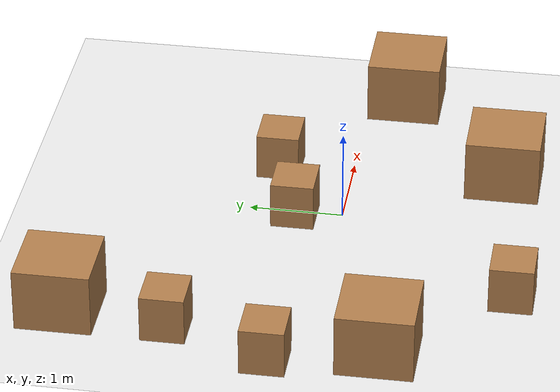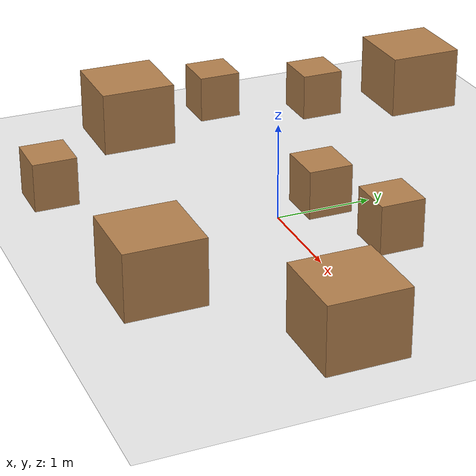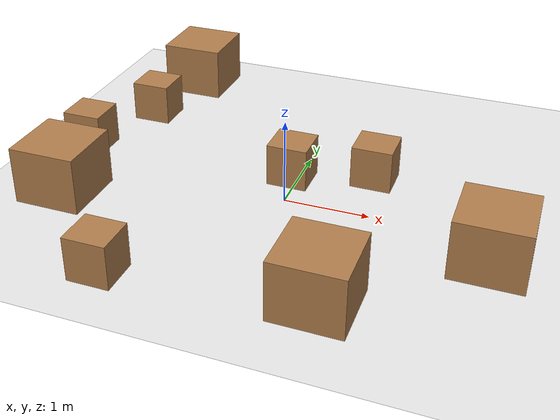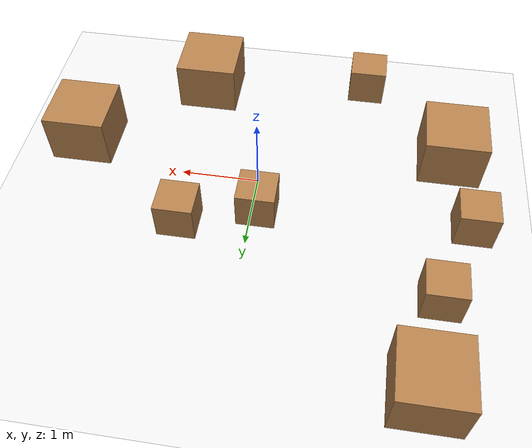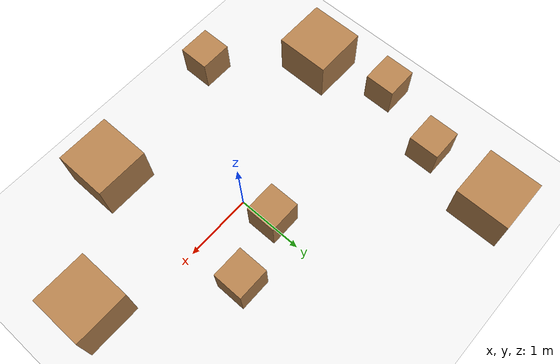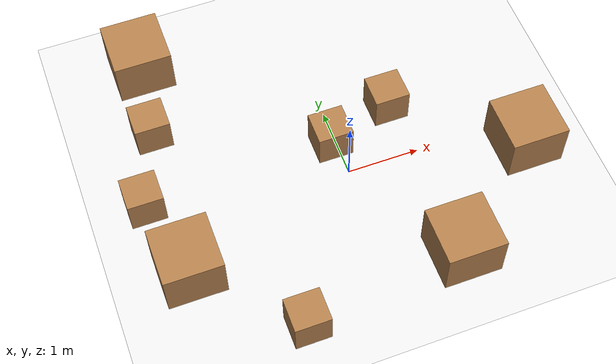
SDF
<sdf version="1.6">
 <world name="default">
  <light name="sun" type="directional">
   <pose>0 0 10 0 -0 0</pose>
   <diffuse>0.8 0.8 0.8 1</diffuse>
   <specular>0.1 0.1 0.1 1</specular>
   <attenuation>
    <range>1000</range>
    <constant>0.9</constant>
    <linear>0.01</linear>
    <quadratic>0.001</quadratic>
   </attenuation>
   <direction>-0.5 0.5 -1</direction>
  </light>
  <model name="ground_plane">
   <static>1</static>
   <link name="link">
    <collision name="collision">
     <geometry><plane><normal>0 0 1</normal><size>100 100</size></plane></geometry>
     <surface><friction><ode><mu>100</mu><mu2>50</mu2></ode></friction></surface>
    </collision>
    <visual name="visual">
     <cast_shadows>0</cast_shadows>
     <geometry><plane><normal>0 0 1</normal><size>100 100</size></plane></geometry>
     <material>
      <script><uri>file://media/materials/scripts/gazebo.material</uri><name>Gazebo/White</name></script>
     </material>
    </visual>
   </link>
  </model>
  <gravity>0 0 -9.8</gravity>
  <magnetic_field>6e-06 2.3e-05 -4.2e-05</magnetic_field>
  <atmosphere type="adiabatic"/>
  <physics name="default_physics" default="0" type="ode">
   <max_step_size>0.005</max_step_size>
   <real_time_factor>1</real_time_factor>
   <real_time_update_rate>1000</real_time_update_rate>
  </physics>
  <scene><ambient>0.4 0.4 0.4 1</ambient><background>1 1 1 1</background><shadows>1</shadows></scene>
  <spherical_coordinates>
   <surface_model>EARTH_WGS84</surface_model>
   <latitude_deg>0</latitude_deg>
   <longitude_deg>0</longitude_deg>
   <elevation>0</elevation>
   <heading_deg>0</heading_deg>
  </spherical_coordinates>
  <model name="Box">
   <link name="link">
    <inertial>
     <mass>0.01</mass>
     <inertia>
      <ixx>0.00455697</ixx>
      <ixy>0</ixy>
      <ixz>0</ixz>
      <iyy>0.00475558</iyy>
      <iyz>0</iyz>
      <izz>0.00426137</izz>
     </inertia>
    </inertial>
    <visual name="visual">
     <geometry><box><size>0.483208 0.461193 0.514245</size></box></geometry>
     <material>
      <script><name>Gazebo/WoodFloor</name><uri>file://media/materials/scripts/gazebo.material</uri></script>
      <ambient>0.3 0.3 0.3 1</ambient>
      <diffuse>0.7 0.7 0.7 1</diffuse>
      <specular>0.01 0.01 0.01 1</specular>
      <emissive>0 0 0 1</emissive>
     </material>
    </visual>
    <collision name="collision">
     <geometry><box><size>0.483208 0.461193 0.514245</size></box></geometry>
     <surface>
      <friction>
       <ode><mu>1</mu><mu2>1</mu2><fdir1>0 0 0</fdir1><slip1>0</slip1><slip2>0</slip2></ode>
       <torsional>
        <coefficient>1</coefficient>
        <patch_radius>0</patch_radius>
        <surface_radius>0</surface_radius>
        <use_patch_radius>1</use_patch_radius>
        <ode><slip>0</slip></ode>
       </torsional>
      </friction>
      <bounce><restitution_coefficient>0</restitution_coefficient><threshold>1e+06</threshold></bounce>
      <contact>
       <collide_without_contact>0</collide_without_contact>
       <collide_without_contact_bitmask>1</collide_without_contact_bitmask>
       <collide_bitmask>1</collide_bitmask>
       <ode>
        <soft_cfm>0</soft_cfm>
        <soft_erp>0.2</soft_erp>
        <kp>1e+13</kp>
        <kd>1</kd>
        <max_vel>0.01</max_vel>
        <min_depth>0</min_depth>
       </ode>
       <bullet>
        <split_impulse>1</split_impulse>
        <split_impulse_penetration_threshold>-0.01</split_impulse_penetration_threshold>
        <soft_cfm>0</soft_cfm>
        <soft_erp>0.2</soft_erp>
        <kp>1e+13</kp>
        <kd>1</kd>
       </bullet>
      </contact>
     </surface>
    </collision>
   </link>
   <static>0</static>
   <pose>-2.73541 0.399797 0.257122 0 -0 0</pose>
  </model>
  <model name="Box_0">
   <link name="link">
    <inertial>
     <mass>0.01</mass>
     <inertia>
      <ixx>0.00455697</ixx>
      <ixy>0</ixy>
      <ixz>0</ixz>
      <iyy>0.00475558</iyy>
      <iyz>0</iyz>
      <izz>0.00426137</izz>
     </inertia>
    </inertial>
    <visual name="visual">
     <geometry><box><size>0.483208 0.461193 0.514245</size></box></geometry>
     <material>
      <script><name>Gazebo/WoodFloor</name><uri>file://media/materials/scripts/gazebo.material</uri></script>
      <ambient>0.3 0.3 0.3 1</ambient>
      <diffuse>0.7 0.7 0.7 1</diffuse>
      <specular>0.01 0.01 0.01 1</specular>
      <emissive>0 0 0 1</emissive>
     </material>
    </visual>
    <collision name="collision">
     <geometry><box><size>0.483208 0.461193 0.514245</size></box></geometry>
     <surface>
      <friction>
       <ode><mu>1</mu><mu2>1</mu2><fdir1>0 0 0</fdir1><slip1>0</slip1><slip2>0</slip2></ode>
       <torsional>
        <coefficient>1</coefficient>
        <patch_radius>0</patch_radius>
        <surface_radius>0</surface_radius>
        <use_patch_radius>1</use_patch_radius>
        <ode><slip>0</slip></ode>
       </torsional>
      </friction>
      <bounce><restitution_coefficient>0</restitution_coefficient><threshold>1e+06</threshold></bounce>
      <contact>
       <collide_without_contact>0</collide_without_contact>
       <collide_without_contact_bitmask>1</collide_without_contact_bitmask>
       <collide_bitmask>1</collide_bitmask>
       <ode>
        <soft_cfm>0</soft_cfm>
        <soft_erp>0.2</soft_erp>
        <kp>1e+13</kp>
        <kd>1</kd>
        <max_vel>0.01</max_vel>
        <min_depth>0</min_depth>
       </ode>
       <bullet>
        <split_impulse>1</split_impulse>
        <split_impulse_penetration_threshold>-0.01</split_impulse_penetration_threshold>
        <soft_cfm>0</soft_cfm>
        <soft_erp>0.2</soft_erp>
        <kp>1e+13</kp>
        <kd>1</kd>
       </bullet>
      </contact>
     </surface>
    </collision>
   </link>
   <static>0</static>
   <pose>-1.29677 -1.94681 0.257122 0 -0 0</pose>
  </model>
  <model name="Box_1">
   <link name="link">
    <inertial>
     <mass>0.01</mass>
     <inertia>
      <ixx>0.00455697</ixx>
      <ixy>0</ixy>
      <ixz>0</ixz>
      <iyy>0.00475558</iyy>
      <iyz>0</iyz>
      <izz>0.00426137</izz>
     </inertia>
    </inertial>
    <visual name="visual">
     <geometry><box><size>0.483208 0.461193 0.514245</size></box></geometry>
     <material>
      <script><name>Gazebo/WoodFloor</name><uri>file://media/materials/scripts/gazebo.material</uri></script>
      <ambient>0.3 0.3 0.3 1</ambient>
      <diffuse>0.7 0.7 0.7 1</diffuse>
      <specular>0.01 0.01 0.01 1</specular>
      <emissive>0 0 0 1</emissive>
     </material>
    </visual>
    <collision name="collision">
     <geometry><box><size>0.483208 0.461193 0.514245</size></box></geometry>
     <surface>
      <friction>
       <ode><mu>1</mu><mu2>1</mu2><fdir1>0 0 0</fdir1><slip1>0</slip1><slip2>0</slip2></ode>
       <torsional>
        <coefficient>1</coefficient>
        <patch_radius>0</patch_radius>
        <surface_radius>0</surface_radius>
        <use_patch_radius>1</use_patch_radius>
        <ode><slip>0</slip></ode>
       </torsional>
      </friction>
      <bounce><restitution_coefficient>0</restitution_coefficient><threshold>1e+06</threshold></bounce>
      <contact>
       <collide_without_contact>0</collide_without_contact>
       <collide_without_contact_bitmask>1</collide_without_contact_bitmask>
       <collide_bitmask>1</collide_bitmask>
       <ode>
        <soft_cfm>0</soft_cfm>
        <soft_erp>0.2</soft_erp>
        <kp>1e+13</kp>
        <kd>1</kd>
        <max_vel>0.01</max_vel>
        <min_depth>0</min_depth>
       </ode>
       <bullet>
        <split_impulse>1</split_impulse>
        <split_impulse_penetration_threshold>-0.01</split_impulse_penetration_threshold>
        <soft_cfm>0</soft_cfm>
        <soft_erp>0.2</soft_erp>
        <kp>1e+13</kp>
        <kd>1</kd>
       </bullet>
      </contact>
     </surface>
    </collision>
   </link>
   <static>0</static>
   <pose>0.855063 0.802123 0.257122 0 -0 0</pose>
  </model>
  <model name="HeavyBox">
   <link name="link">
    <inertial>
     <mass>0.0579948</mass>
     <inertia>
      <ixx>0.0402452</ixx>
      <ixy>0</ixy>
      <ixz>0</ixz>
      <iyy>0.0399236</iyy>
      <iyz>0</iyz>
      <izz>0.0461707</izz>
     </inertia>
    </inertial>
    <visual name="visual">
     <geometry><box><size>0.79482 0.800386 0.684447</size></box></geometry>
     <material>
      <script><name>Gazebo/WoodFloor</name><uri>file://media/materials/scripts/gazebo.material</uri></script>
      <ambient>0.3 0.3 0.3 1</ambient>
      <diffuse>0.7 0.7 0.7 1</diffuse>
      <specular>0.01 0.01 0.01 1</specular>
      <emissive>0 0 0 1</emissive>
     </material>
    </visual>
    <collision name="collision">
     <geometry><box><size>0.79482 0.800386 0.684447</size></box></geometry>
     <surface>
      <friction>
       <ode><mu>1</mu><mu2>1</mu2><fdir1>0 0 0</fdir1><slip1>0</slip1><slip2>0</slip2></ode>
       <torsional>
        <coefficient>1</coefficient>
        <patch_radius>0</patch_radius>
        <surface_radius>0</surface_radius>
        <use_patch_radius>1</use_patch_radius>
        <ode><slip>0</slip></ode>
       </torsional>
      </friction>
      <bounce><restitution_coefficient>0</restitution_coefficient><threshold>1e+06</threshold></bounce>
      <contact>
       <collide_without_contact>0</collide_without_contact>
       <collide_without_contact_bitmask>1</collide_without_contact_bitmask>
       <collide_bitmask>1</collide_bitmask>
       <ode>
        <soft_cfm>0</soft_cfm>
        <soft_erp>0.2</soft_erp>
        <kp>1e+13</kp>
        <kd>1</kd>
        <max_vel>0.01</max_vel>
        <min_depth>0</min_depth>
       </ode>
       <bullet>
        <split_impulse>1</split_impulse>
        <split_impulse_penetration_threshold>-0.01</split_impulse_penetration_threshold>
        <soft_cfm>0</soft_cfm>
        <soft_erp>0.2</soft_erp>
        <kp>1e+13</kp>
        <kd>1</kd>
       </bullet>
      </contact>
     </surface>
    </collision>
   </link>
   <static>0</static>
   <pose>-2.17372 2.61263 0.342223 0 -0 0</pose>
  </model>
  <model name="HeavyBox_0">
   <link name="link">
    <inertial>
     <mass>0.0579948</mass>
     <inertia>
      <ixx>0.0402452</ixx>
      <ixy>0</ixy>
      <ixz>0</ixz>
      <iyy>0.0399236</iyy>
      <iyz>0</iyz>
      <izz>0.0461707</izz>
     </inertia>
    </inertial>
    <visual name="visual">
     <geometry><box><size>0.79482 0.800386 0.684447</size></box></geometry>
     <material>
      <script><name>Gazebo/WoodFloor</name><uri>file://media/materials/scripts/gazebo.material</uri></script>
      <ambient>0.3 0.3 0.3 1</ambient>
      <diffuse>0.7 0.7 0.7 1</diffuse>
      <specular>0.01 0.01 0.01 1</specular>
      <emissive>0 0 0 1</emissive>
     </material>
    </visual>
    <collision name="collision">
     <geometry><box><size>0.79482 0.800386 0.684447</size></box></geometry>
     <surface>
      <friction>
       <ode><mu>1</mu><mu2>1</mu2><fdir1>0 0 0</fdir1><slip1>0</slip1><slip2>0</slip2></ode>
       <torsional>
        <coefficient>1</coefficient>
        <patch_radius>0</patch_radius>
        <surface_radius>0</surface_radius>
        <use_patch_radius>1</use_patch_radius>
        <ode><slip>0</slip></ode>
       </torsional>
      </friction>
      <bounce><restitution_coefficient>0</restitution_coefficient><threshold>1e+06</threshold></bounce>
      <contact>
       <collide_without_contact>0</collide_without_contact>
       <collide_without_contact_bitmask>1</collide_without_contact_bitmask>
       <collide_bitmask>1</collide_bitmask>
       <ode>
        <soft_cfm>0</soft_cfm>
        <soft_erp>0.2</soft_erp>
        <kp>1e+13</kp>
        <kd>1</kd>
        <max_vel>0.01</max_vel>
        <min_depth>0</min_depth>
       </ode>
       <bullet>
        <split_impulse>1</split_impulse>
        <split_impulse_penetration_threshold>-0.01</split_impulse_penetration_threshold>
        <soft_cfm>0</soft_cfm>
        <soft_erp>0.2</soft_erp>
        <kp>1e+13</kp>
        <kd>1</kd>
       </bullet>
      </contact>
     </surface>
    </collision>
   </link>
   <static>0</static>
   <pose>-2.46098 -0.708765 0.342223 0 -0 0</pose>
  </model>
  <model name="HeavyBox_1">
   <link name="link">
    <inertial>
     <mass>0.0579948</mass>
     <inertia>
      <ixx>0.0402452</ixx>
      <ixy>0</ixy>
      <ixz>0</ixz>
      <iyy>0.0399236</iyy>
      <iyz>0</iyz>
      <izz>0.0461707</izz>
     </inertia>
    </inertial>
    <visual name="visual">
     <geometry><box><size>0.79482 0.800386 0.684447</size></box></geometry>
     <material>
      <script><name>Gazebo/WoodFloor</name><uri>file://media/materials/scripts/gazebo.material</uri></script>
      <ambient>0.3 0.3 0.3 1</ambient>
      <diffuse>0.7 0.7 0.7 1</diffuse>
      <specular>0.01 0.01 0.01 1</specular>
      <emissive>0 0 0 1</emissive>
     </material>
    </visual>
    <collision name="collision">
     <geometry><box><size>0.79482 0.800386 0.684447</size></box></geometry>
     <surface>
      <friction>
       <ode><mu>1</mu><mu2>1</mu2><fdir1>0 0 0</fdir1><slip1>0</slip1><slip2>0</slip2></ode>
       <torsional>
        <coefficient>1</coefficient>
        <patch_radius>0</patch_radius>
        <surface_radius>0</surface_radius>
        <use_patch_radius>1</use_patch_radius>
        <ode><slip>0</slip></ode>
       </torsional>
      </friction>
      <bounce><restitution_coefficient>0</restitution_coefficient><threshold>1e+06</threshold></bounce>
      <contact>
       <collide_without_contact>0</collide_without_contact>
       <collide_without_contact_bitmask>1</collide_without_contact_bitmask>
       <collide_bitmask>1</collide_bitmask>
       <ode>
        <soft_cfm>0</soft_cfm>
        <soft_erp>0.2</soft_erp>
        <kp>1e+13</kp>
        <kd>1</kd>
        <max_vel>0.01</max_vel>
        <min_depth>0</min_depth>
       </ode>
       <bullet>
        <split_impulse>1</split_impulse>
        <split_impulse_penetration_threshold>-0.01</split_impulse_penetration_threshold>
        <soft_cfm>0</soft_cfm>
        <soft_erp>0.2</soft_erp>
        <kp>1e+13</kp>
        <kd>1</kd>
       </bullet>
      </contact>
     </surface>
    </collision>
   </link>
   <static>0</static>
   <pose>0.92371 -1.65495 0.342223 0 -0 0</pose>
  </model>
  <model name="HeavyBox_2">
   <link name="link">
    <inertial>
     <mass>0.0579948</mass>
     <inertia>
      <ixx>0.0402452</ixx>
      <ixy>0</ixy>
      <ixz>0</ixz>
      <iyy>0.0399236</iyy>
      <iyz>0</iyz>
      <izz>0.0461707</izz>
     </inertia>
    </inertial>
    <visual name="visual">
     <geometry><box><size>0.79482 0.800386 0.684447</size></box></geometry>
     <material>
      <script><name>Gazebo/WoodFloor</name><uri>file://media/materials/scripts/gazebo.material</uri></script>
      <ambient>0.3 0.3 0.3 1</ambient>
      <diffuse>0.7 0.7 0.7 1</diffuse>
      <specular>0.01 0.01 0.01 1</specular>
      <emissive>0 0 0 1</emissive>
     </material>
    </visual>
    <collision name="collision">
     <geometry><box><size>0.79482 0.800386 0.684447</size></box></geometry>
     <surface>
      <friction>
       <ode><mu>1</mu><mu2>1</mu2><fdir1>0 0 0</fdir1><slip1>0</slip1><slip2>0</slip2></ode>
       <torsional>
        <coefficient>1</coefficient>
        <patch_radius>0</patch_radius>
        <surface_radius>0</surface_radius>
        <use_patch_radius>1</use_patch_radius>
        <ode><slip>0</slip></ode>
       </torsional>
      </friction>
      <bounce><restitution_coefficient>0</restitution_coefficient><threshold>1e+06</threshold></bounce>
      <contact>
       <collide_without_contact>0</collide_without_contact>
       <collide_without_contact_bitmask>1</collide_without_contact_bitmask>
       <collide_bitmask>1</collide_bitmask>
       <ode>
        <soft_cfm>0</soft_cfm>
        <soft_erp>0.2</soft_erp>
        <kp>1e+13</kp>
        <kd>1</kd>
        <max_vel>0.01</max_vel>
        <min_depth>0</min_depth>
       </ode>
       <bullet>
        <split_impulse>1</split_impulse>
        <split_impulse_penetration_threshold>-0.01</split_impulse_penetration_threshold>
        <soft_cfm>0</soft_cfm>
        <soft_erp>0.2</soft_erp>
        <kp>1e+13</kp>
        <kd>1</kd>
       </bullet>
      </contact>
     </surface>
    </collision>
   </link>
   <static>0</static>
   <pose>2.39174 -0.406976 0.342223 0 -0 0</pose>
  </model>
  <model name="Box_2">
   <link name="link">
    <inertial>
     <mass>0.01</mass>
     <inertia>
      <ixx>0.00455697</ixx>
      <ixy>0</ixy>
      <ixz>0</ixz>
      <iyy>0.00475558</iyy>
      <iyz>0</iyz>
      <izz>0.00426137</izz>
     </inertia>
    </inertial>
    <visual name="visual">
     <geometry><box><size>0.483208 0.461193 0.514245</size></box></geometry>
     <material>
      <script><name>Gazebo/WoodFloor</name><uri>file://media/materials/scripts/gazebo.material</uri></script>
      <ambient>0.3 0.3 0.3 1</ambient>
      <diffuse>0.7 0.7 0.7 1</diffuse>
      <specular>0.01 0.01 0.01 1</specular>
      <emissive>0 0 0 1</emissive>
     </material>
    </visual>
    <collision name="collision">
     <geometry><box><size>0.483208 0.461193 0.514245</size></box></geometry>
     <surface>
      <friction>
       <ode><mu>1</mu><mu2>1</mu2><fdir1>0 0 0</fdir1><slip1>0</slip1><slip2>0</slip2></ode>
       <torsional>
        <coefficient>1</coefficient>
        <patch_radius>0</patch_radius>
        <surface_radius>0</surface_radius>
        <use_patch_radius>1</use_patch_radius>
        <ode><slip>0</slip></ode>
       </torsional>
      </friction>
      <bounce><restitution_coefficient>0</restitution_coefficient><threshold>1e+06</threshold></bounce>
      <contact>
       <collide_without_contact>0</collide_without_contact>
       <collide_without_contact_bitmask>1</collide_without_contact_bitmask>
       <collide_bitmask>1</collide_bitmask>
       <ode>
        <soft_cfm>0</soft_cfm>
        <soft_erp>0.2</soft_erp>
        <kp>1e+13</kp>
        <kd>1</kd>
        <max_vel>0.01</max_vel>
        <min_depth>0</min_depth>
       </ode>
       <bullet>
        <split_impulse>1</split_impulse>
        <split_impulse_penetration_threshold>-0.01</split_impulse_penetration_threshold>
        <soft_cfm>0</soft_cfm>
        <soft_erp>0.2</soft_erp>
        <kp>1e+13</kp>
        <kd>1</kd>
       </bullet>
      </contact>
     </surface>
    </collision>
   </link>
   <static>0</static>
   <pose>-2.33619 1.48041 0.257122 0 -0 0</pose>
  </model>
  <model name="Box_3">
   <link name="link">
    <inertial>
     <mass>0.01</mass>
     <inertia>
      <ixx>0.00455697</ixx>
      <ixy>0</ixy>
      <ixz>0</ixz>
      <iyy>0.00475558</iyy>
      <iyz>0</iyz>
      <izz>0.00426137</izz>
     </inertia>
    </inertial>
    <visual name="visual">
     <geometry><box><size>0.483208 0.461193 0.514245</size></box></geometry>
     <material>
      <script><name>Gazebo/WoodFloor</name><uri>file://media/materials/scripts/gazebo.material</uri></script>
      <ambient>0.3 0.3 0.3 1</ambient>
      <diffuse>0.7 0.7 0.7 1</diffuse>
      <specular>0.01 0.01 0.01 1</specular>
      <emissive>0 0 0 1</emissive>
     </material>
    </visual>
    <collision name="collision">
     <geometry><box><size>0.483208 0.461193 0.514245</size></box></geometry>
     <surface>
      <friction>
       <ode><mu>1</mu><mu2>1</mu2><fdir1>0 0 0</fdir1><slip1>0</slip1><slip2>0</slip2></ode>
       <torsional>
        <coefficient>1</coefficient>
        <patch_radius>0</patch_radius>
        <surface_radius>0</surface_radius>
        <use_patch_radius>1</use_patch_radius>
        <ode><slip>0</slip></ode>
       </torsional>
      </friction>
      <bounce><restitution_coefficient>0</restitution_coefficient><threshold>1e+06</threshold></bounce>
      <contact>
       <collide_without_contact>0</collide_without_contact>
       <collide_without_contact_bitmask>1</collide_without_contact_bitmask>
       <collide_bitmask>1</collide_bitmask>
       <ode>
        <soft_cfm>0</soft_cfm>
        <soft_erp>0.2</soft_erp>
        <kp>1e+13</kp>
        <kd>1</kd>
        <max_vel>0.01</max_vel>
        <min_depth>0</min_depth>
       </ode>
       <bullet>
        <split_impulse>1</split_impulse>
        <split_impulse_penetration_threshold>-0.01</split_impulse_penetration_threshold>
        <soft_cfm>0</soft_cfm>
        <soft_erp>0.2</soft_erp>
        <kp>1e+13</kp>
        <kd>1</kd>
       </bullet>
      </contact>
     </surface>
    </collision>
   </link>
   <static>0</static>
   <pose>-0.078578 0.500734 0.257122 0 -0 0</pose>
  </model>
 </world>
</sdf>
